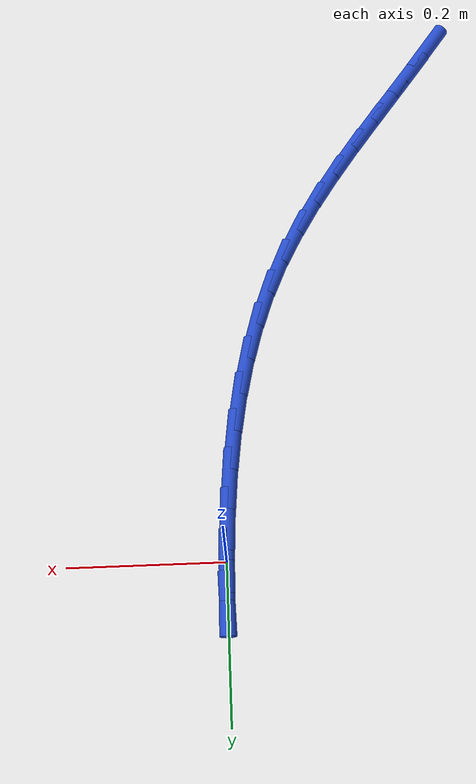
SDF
<sdf version="1.6">
 <world name="default">
  <model name="ground_plane">
   <static>1</static>
   <link name="link">
    <collision name="collision">
     <geometry><plane><normal>0 0 1</normal><size>100 100</size></plane></geometry>
     <surface><friction><ode><mu>100</mu><mu2>50</mu2></ode></friction></surface>
    </collision>
    <visual name="visual">
     <cast_shadows>0</cast_shadows>
     <geometry><plane><normal>0 0 1</normal><size>100 100</size></plane></geometry>
     <material>
      <script><uri>file://media/materials/scripts/gazebo.material</uri><name>Gazebo/WhiteGlow</name></script>
     </material>
    </visual>
   </link>
  </model>
  <model name="line">
   <link name="link_0">
    <pose>4.5102810375396984e-17 0.0 0.01 0 1.57 1.5543094078143833</pose>
    <collision name="collision">
     <geometry><cylinder><radius>0.01</radius><length>0.08</length></cylinder></geometry>
    </collision>
    <visual name="visual">
     <material>
      <script><name>Gazebo/Blue</name><uri>file://media/materials/scripts/gazebo.material</uri></script>
     </material>
     <geometry><cylinder><radius>0.01</radius><length>0.08</length></cylinder></geometry>
    </visual>
   </link>
   <link name="link_1">
    <pose>0.0008690291871561428 0.05270544771607257 0.01 0 1.57 -1.5477289042147233</pose>
    <collision name="collision">
     <geometry><cylinder><radius>0.01</radius><length>0.08</length></cylinder></geometry>
    </collision>
    <visual name="visual">
     <material>
      <script><name>Gazebo/Blue</name><uri>file://media/materials/scripts/gazebo.material</uri></script>
     </material>
     <geometry><cylinder><radius>0.01</radius><length>0.08</length></cylinder></geometry>
    </visual>
   </link>
   <link name="link_144">
    <pose>-0.3086404502115421 -0.7287728573291127 0.01 0 1.57 0.9383332310572473</pose>
    <collision name="collision">
     <geometry><cylinder><radius>0.01</radius><length>0.08</length></cylinder></geometry>
    </collision>
    <visual name="visual">
     <material>
      <script><name>Gazebo/Blue</name><uri>file://media/materials/scripts/gazebo.material</uri></script>
     </material>
     <geometry><cylinder><radius>0.01</radius><length>0.08</length></cylinder></geometry>
    </visual>
   </link>
   <link name="link_145">
    <pose>-0.27760422191930695 -0.6864253591022398 0.01 0 1.57 0.9263381469351855</pose>
    <collision name="collision">
     <geometry><cylinder><radius>0.01</radius><length>0.08</length></cylinder></geometry>
    </collision>
    <visual name="visual">
     <material>
      <script><name>Gazebo/Blue</name><uri>file://media/materials/scripts/gazebo.material</uri></script>
     </material>
     <geometry><cylinder><radius>0.01</radius><length>0.08</length></cylinder></geometry>
    </visual>
   </link>
   <link name="link_146">
    <pose>-0.2463774303386394 -0.6448725486022618 0.01 0 1.57 0.9249513933180941</pose>
    <collision name="collision">
     <geometry><cylinder><radius>0.01</radius><length>0.08</length></cylinder></geometry>
    </collision>
    <visual name="visual">
     <material>
      <script><name>Gazebo/Blue</name><uri>file://media/materials/scripts/gazebo.material</uri></script>
     </material>
     <geometry><cylinder><radius>0.01</radius><length>0.08</length></cylinder></geometry>
    </visual>
   </link>
   <link name="link_147">
    <pose>-0.215421131165088 -0.6037984003469345 0.01 0 1.57 0.9349251191420735</pose>
    <collision name="collision">
     <geometry><cylinder><radius>0.01</radius><length>0.08</length></cylinder></geometry>
    </collision>
    <visual name="visual">
     <material>
      <script><name>Gazebo/Blue</name><uri>file://media/materials/scripts/gazebo.material</uri></script>
     </material>
     <geometry><cylinder><radius>0.01</radius><length>0.08</length></cylinder></geometry>
    </visual>
   </link>
   <link name="link_148">
    <pose>-0.18521131256654097 -0.5628717769461926 0.01 0 1.57 0.9566472491714386</pose>
    <collision name="collision">
     <geometry><cylinder><radius>0.01</radius><length>0.08</length></cylinder></geometry>
    </collision>
    <visual name="visual">
     <material>
      <script><name>Gazebo/Blue</name><uri>file://media/materials/scripts/gazebo.material</uri></script>
     </material>
     <geometry><cylinder><radius>0.01</radius><length>0.08</length></cylinder></geometry>
    </visual>
   </link>
   <link name="link_149">
    <pose>-0.15622396271088676 -0.5217615410099715 0.01 0 1.57 0.990501967016518</pose>
    <collision name="collision">
     <geometry><cylinder><radius>0.01</radius><length>0.08</length></cylinder></geometry>
    </collision>
    <visual name="visual">
     <material>
      <script><name>Gazebo/Blue</name><uri>file://media/materials/scripts/gazebo.material</uri></script>
     </material>
     <geometry><cylinder><radius>0.01</radius><length>0.08</length></cylinder></geometry>
    </visual>
   </link>
   <link name="link_150">
    <pose>-0.12893506976601402 -0.48013655514820647 0.01 0 1.57 1.0367736626403965</pose>
    <collision name="collision">
     <geometry><cylinder><radius>0.01</radius><length>0.08</length></cylinder></geometry>
    </collision>
    <visual name="visual">
     <material>
      <script><name>Gazebo/Blue</name><uri>file://media/materials/scripts/gazebo.material</uri></script>
     </material>
     <geometry><cylinder><radius>0.01</radius><length>0.08</length></cylinder></geometry>
    </visual>
   </link>
   <link name="link_151">
    <pose>-0.10382062189981102 -0.4376656819708326 0.01 0 1.57 1.0954862220891144</pose>
    <collision name="collision">
     <geometry><cylinder><radius>0.01</radius><length>0.08</length></cylinder></geometry>
    </collision>
    <visual name="visual">
     <material>
      <script><name>Gazebo/Blue</name><uri>file://media/materials/scripts/gazebo.material</uri></script>
     </material>
     <geometry><cylinder><radius>0.01</radius><length>0.08</length></cylinder></geometry>
    </visual>
   </link>
   <link name="link_152">
    <pose>-0.08135660728016722 -0.3940177840877866 0.01 0 1.57 1.1650144788513612</pose>
    <collision name="collision">
     <geometry><cylinder><radius>0.01</radius><length>0.08</length></cylinder></geometry>
    </collision>
    <visual name="visual">
     <material>
      <script><name>Gazebo/Blue</name><uri>file://media/materials/scripts/gazebo.material</uri></script>
     </material>
     <geometry><cylinder><radius>0.01</radius><length>0.08</length></cylinder></geometry>
    </visual>
   </link>
   <link name="link_153">
    <pose>-0.06197069913842675 -0.3488949646534124 0.01 0 1.57 1.2341926848683602</pose>
    <collision name="collision">
     <geometry><cylinder><radius>0.01</radius><length>0.08</length></cylinder></geometry>
    </collision>
    <visual name="visual">
     <material>
      <script><name>Gazebo/Blue</name><uri>file://media/materials/scripts/gazebo.material</uri></script>
     </material>
     <geometry><cylinder><radius>0.01</radius><length>0.08</length></cylinder></geometry>
    </visual>
   </link>
   <link name="link_154">
    <pose>-0.045663731597849734 -0.3022929909628495 0.01 0 1.57 1.2972337166986974</pose>
    <collision name="collision">
     <geometry><cylinder><radius>0.01</radius><length>0.08</length></cylinder></geometry>
    </collision>
    <visual name="visual">
     <material>
      <script><name>Gazebo/Blue</name><uri>file://media/materials/scripts/gazebo.material</uri></script>
     </material>
     <geometry><cylinder><radius>0.01</radius><length>0.08</length></cylinder></geometry>
    </visual>
   </link>
   <link name="link_155">
    <pose>-0.0322140539283577 -0.25436069928279686 0.01 0 1.57 1.3540281190186605</pose>
    <collision name="collision">
     <geometry><cylinder><radius>0.01</radius><length>0.08</length></cylinder></geometry>
    </collision>
    <visual name="visual">
     <material>
      <script><name>Gazebo/Blue</name><uri>file://media/materials/scripts/gazebo.material</uri></script>
     </material>
     <geometry><cylinder><radius>0.01</radius><length>0.08</length></cylinder></geometry>
    </visual>
   </link>
   <link name="link_156">
    <pose>-0.021398094311459843 -0.20524824758353397 0.01 0 1.57 1.4047020826897265</pose>
    <collision name="collision">
     <geometry><cylinder><radius>0.01</radius><length>0.08</length></cylinder></geometry>
    </collision>
    <visual name="visual">
     <material>
      <script><name>Gazebo/Blue</name><uri>file://media/materials/scripts/gazebo.material</uri></script>
     </material>
     <geometry><cylinder><radius>0.01</radius><length>0.08</length></cylinder></geometry>
    </visual>
   </link>
   <link name="link_157">
    <pose>-0.012992280928665898 -0.1551057938353429 0.01 0 1.57 1.4495021174998206</pose>
    <collision name="collision">
     <geometry><cylinder><radius>0.01</radius><length>0.08</length></cylinder></geometry>
    </collision>
    <visual name="visual">
     <material>
      <script><name>Gazebo/Blue</name><uri>file://media/materials/scripts/gazebo.material</uri></script>
     </material>
     <geometry><cylinder><radius>0.01</radius><length>0.08</length></cylinder></geometry>
    </visual>
   </link>
   <link name="link_158">
    <pose>-0.006773041961485024 -0.10408349600850324 0.01 0 1.57 1.4887380452368395</pose>
    <collision name="collision">
     <geometry><cylinder><radius>0.01</radius><length>0.08</length></cylinder></geometry>
    </collision>
    <visual name="visual">
     <material>
      <script><name>Gazebo/Blue</name><uri>file://media/materials/scripts/gazebo.material</uri></script>
     </material>
     <geometry><cylinder><radius>0.01</radius><length>0.08</length></cylinder></geometry>
    </visual>
   </link>
   <link name="link_159">
    <pose>-0.00251680559142658 -0.052331512073295415 0.01 0 1.57 1.5227398549685243</pose>
    <collision name="collision">
     <geometry><cylinder><radius>0.01</radius><length>0.08</length></cylinder></geometry>
    </collision>
    <visual name="visual">
     <material>
      <script><name>Gazebo/Blue</name><uri>file://media/materials/scripts/gazebo.material</uri></script>
     </material>
     <geometry><cylinder><radius>0.01</radius><length>0.08</length></cylinder></geometry>
    </visual>
   </link>
   <link name="link_160">
    <pose>5.5077470362263625e-17 1.8041124150158794e-16 0.01 0 1.57 1.5518272244965288</pose>
    <collision name="collision">
     <geometry><cylinder><radius>0.01</radius><length>0.08</length></cylinder></geometry>
    </collision>
    <visual name="visual">
     <material>
      <script><name>Gazebo/Blue</name><uri>file://media/materials/scripts/gazebo.material</uri></script>
     </material>
     <geometry><cylinder><radius>0.01</radius><length>0.08</length></cylinder></geometry>
    </visual>
   </link>
   <link name="link_161">
    <pose>0.0010009466312855307 0.052760882241104055 0.01 0 1.57 1.5518272244965285</pose>
    <collision name="collision">
     <geometry><cylinder><radius>0.01</radius><length>0.08</length></cylinder></geometry>
    </collision>
    <visual name="visual">
     <material>
      <script><name>Gazebo/Blue</name><uri>file://media/materials/scripts/gazebo.material</uri></script>
     </material>
     <geometry><cylinder><radius>0.01</radius><length>0.08</length></cylinder></geometry>
    </visual>
   </link>
  </model>
 </world>
</sdf>
